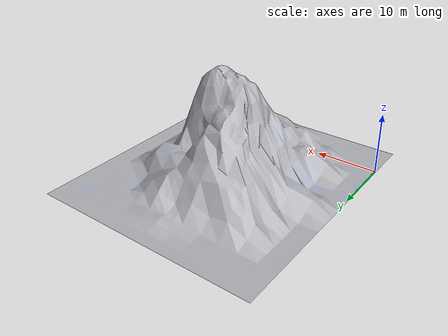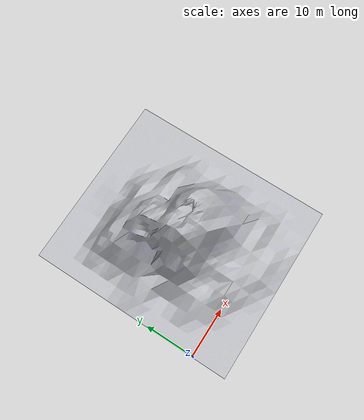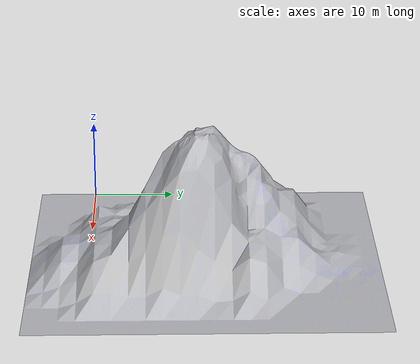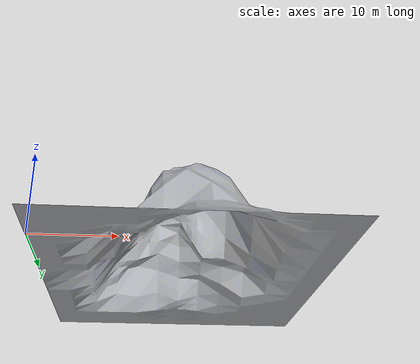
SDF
<?xml version="1.0" ?>
<sdf version="1.5">
  <model name="rock_1">
    <static>true</static>
    <link name="rock_1__link">
      <collision name="collision">
        <geometry>
          <mesh>
          <scale>3 3 3</scale>
            <uri>model://rock_1/meshes/model.dae</uri>
          </mesh>
        </geometry>
      </collision>
      <visual name="visual">
        <geometry>
          <mesh>
          <scale>3 3 3</scale>
            <uri>model://rock_1/meshes/model.dae</uri>
          </mesh>
        </geometry>
      </visual>
    </link>
  </model>
</sdf>
